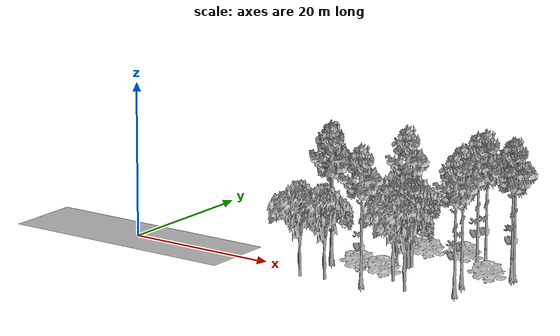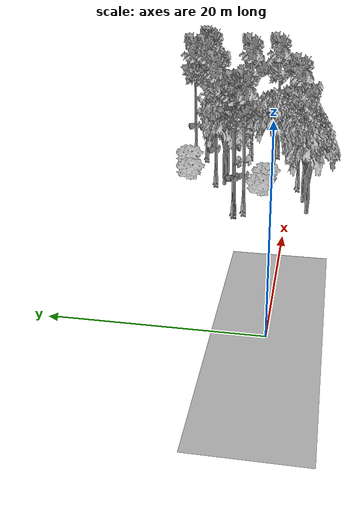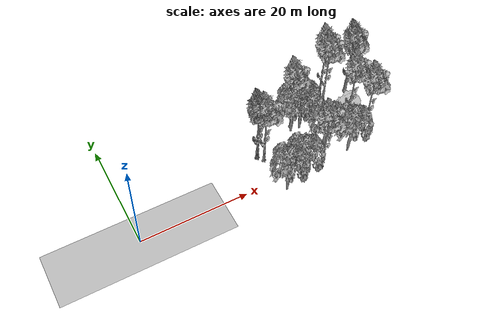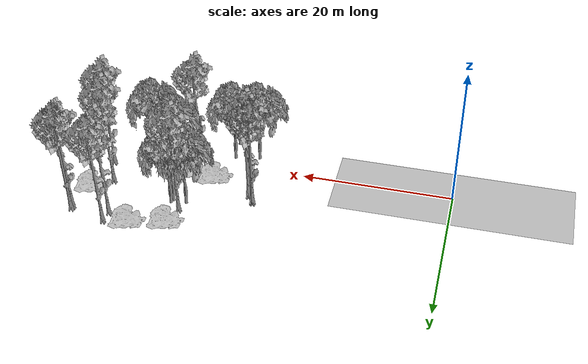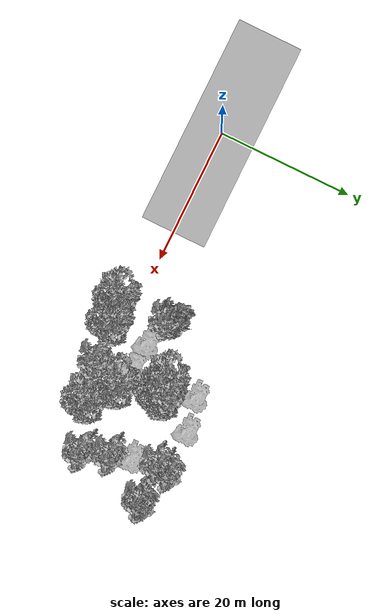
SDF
<sdf version="1.7">
 <world name="default">
  <model name="ground_plane">
   <static>1</static>
   <link name="link">
    <collision name="collision">
     <pose>-50 0 0 0 -0 0</pose>
     <geometry><plane><normal>0 0 1</normal><size>100 100</size></plane></geometry>
     <surface><contact><ode><min_depth>0.01</min_depth><max_vel>0</max_vel></ode></contact></surface>
    </collision>
    <visual name="grass">
     <cast_shadows>0</cast_shadows>
     <geometry>
      <mesh>
       <scale>0.5814285714285714 0.18142857142857144 0.1</scale>
       <uri>file://grass_plane/meshes/grass_plane.dae</uri>
      </mesh>
     </geometry>
    </visual>
   </link>
  </model>
  <model name="Tree 1">
   <static>1</static>
   <pose>40.46276296069715 -0.10571722466873723 0 1.57079 -0 0</pose>
   <link name="link">
    <collision name="collision">
     <geometry><mesh><scale>3.5 5 3.5</scale><uri>model://tree_2/meshes/tree_2.obj</uri></mesh></geometry>
    </collision>
    <visual name="visual">
     <geometry><mesh><scale>3.5 5 3.5</scale><uri>model://tree_2/meshes/tree_2.obj</uri></mesh></geometry>
    </visual>
   </link>
  </model>
  <model name="Tree 2">
   <static>1</static>
   <pose>29.856909890999887 -1.691752062501724 0 1.57079 -0 0</pose>
   <link name="link">
    <collision name="collision">
     <geometry><mesh><scale>3.5 5 3.5</scale><uri>model://tree_2/meshes/tree_2.obj</uri></mesh></geometry>
    </collision>
    <visual name="visual">
     <geometry><mesh><scale>3.5 5 3.5</scale><uri>model://tree_2/meshes/tree_2.obj</uri></mesh></geometry>
    </visual>
   </link>
  </model>
  <model name="Tree 8">
   <static>1</static>
   <pose>43.079067587226476 12.156543890776938 0 1.57079 -0 0</pose>
   <link name="link">
    <collision name="collision">
     <geometry><mesh><scale>3.5 5 3.5</scale><uri>model://tree_9/meshes/tree_9.obj</uri></mesh></geometry>
    </collision>
    <visual name="visual">
     <geometry><mesh><scale>3.5 5 3.5</scale><uri>model://tree_9/meshes/tree_9.obj</uri></mesh></geometry>
    </visual>
   </link>
  </model>
  <model name="Tree 11">
   <static>1</static>
   <pose>31.30791522382289 3.5100560860764567 0 1.57079 -0 0</pose>
   <link name="link">
    <collision name="collision">
     <geometry><mesh><scale>3 2 3</scale><uri>model://tree_3/meshes/tree_3.obj</uri></mesh></geometry>
    </collision>
    <visual name="visual">
     <geometry><mesh><scale>3 2 3</scale><uri>model://tree_3/meshes/tree_3.obj</uri></mesh></geometry>
    </visual>
   </link>
  </model>
  <model name="Tree 13">
   <static>1</static>
   <pose>48.193910877338 12.449965114180863 0 1.57079 -0 0</pose>
   <link name="link">
    <collision name="collision">
     <geometry><mesh><scale>3.5 5 3.5</scale><uri>model://tree_9/meshes/tree_9.obj</uri></mesh></geometry>
    </collision>
    <visual name="visual">
     <geometry><mesh><scale>3.5 5 3.5</scale><uri>model://tree_9/meshes/tree_9.obj</uri></mesh></geometry>
    </visual>
   </link>
  </model>
  <model name="Tree 19">
   <static>1</static>
   <pose>39.784866254239205 13.94450292007286 0 1.57079 -0 0</pose>
   <link name="link">
    <collision name="collision">
     <geometry><mesh><scale>3 2 3</scale><uri>model://tree_3/meshes/tree_3.obj</uri></mesh></geometry>
    </collision>
    <visual name="visual">
     <geometry><mesh><scale>3 2 3</scale><uri>model://tree_3/meshes/tree_3.obj</uri></mesh></geometry>
    </visual>
   </link>
  </model>
  <model name="Tree 34">
   <static>1</static>
   <pose>25.53621532801921 6.1579300585820285 0 1.57079 -0 0</pose>
   <link name="link">
    <collision name="collision">
     <geometry><mesh><scale>3.5 5 3.5</scale><uri>model://tree_9/meshes/tree_9.obj</uri></mesh></geometry>
    </collision>
    <visual name="visual">
     <geometry><mesh><scale>3.5 5 3.5</scale><uri>model://tree_9/meshes/tree_9.obj</uri></mesh></geometry>
    </visual>
   </link>
  </model>
  <model name="Tree 41">
   <static>1</static>
   <pose>34.45037603316423 9.625623190624879 0 1.57079 -0 0</pose>
   <link name="link">
    <collision name="collision">
     <geometry><mesh><scale>3.5 5 3.5</scale><uri>model://tree_9/meshes/tree_9.obj</uri></mesh></geometry>
    </collision>
    <visual name="visual">
     <geometry><mesh><scale>3.5 5 3.5</scale><uri>model://tree_9/meshes/tree_9.obj</uri></mesh></geometry>
    </visual>
   </link>
  </model>
  <model name="Tree 56">
   <static>1</static>
   <pose>45.94304104421097 2.590300618802022 0 1.57079 -0 0</pose>
   <link name="link">
    <collision name="collision">
     <geometry><mesh><scale>3.5 5 3.5</scale><uri>model://tree_9/meshes/tree_9.obj</uri></mesh></geometry>
    </collision>
    <visual name="visual">
     <geometry><mesh><scale>3.5 5 3.5</scale><uri>model://tree_9/meshes/tree_9.obj</uri></mesh></geometry>
    </visual>
   </link>
  </model>
  <model name="Tree 62">
   <static>1</static>
   <pose>26.288969689116897 5.131095925059988 0 1.57079 -0 0</pose>
   <link name="link">
    <collision name="collision">
     <geometry><mesh><scale>3.5 5 3.5</scale><uri>model://tree_9/meshes/tree_9.obj</uri></mesh></geometry>
    </collision>
    <visual name="visual">
     <geometry><mesh><scale>3.5 5 3.5</scale><uri>model://tree_9/meshes/tree_9.obj</uri></mesh></geometry>
    </visual>
   </link>
  </model>
  <model name="Tree 71">
   <static>1</static>
   <pose>43.32704779671005 13.731755057601621 0 1.57079 -0 0</pose>
   <link name="link">
    <collision name="collision">
     <geometry><mesh><scale>3.5 5 3.5</scale><uri>model://tree_9/meshes/tree_9.obj</uri></mesh></geometry>
    </collision>
    <visual name="visual">
     <geometry><mesh><scale>3.5 5 3.5</scale><uri>model://tree_9/meshes/tree_9.obj</uri></mesh></geometry>
    </visual>
   </link>
  </model>
  <model name="Tree 72">
   <static>1</static>
   <pose>35.43525270231825 8.279455354706144 0 1.57079 -0 0</pose>
   <link name="link">
    <collision name="collision">
     <geometry><mesh><scale>3.5 5 3.5</scale><uri>model://tree_2/meshes/tree_2.obj</uri></mesh></geometry>
    </collision>
    <visual name="visual">
     <geometry><mesh><scale>3.5 5 3.5</scale><uri>model://tree_2/meshes/tree_2.obj</uri></mesh></geometry>
    </visual>
   </link>
  </model>
  <model name="Tree 85">
   <static>1</static>
   <pose>37.02871461609419 2.5571218210506075 0 1.57079 -0 0</pose>
   <link name="link">
    <collision name="collision">
     <geometry><mesh><scale>3.5 5 3.5</scale><uri>model://tree_2/meshes/tree_2.obj</uri></mesh></geometry>
    </collision>
    <visual name="visual">
     <geometry><mesh><scale>3.5 5 3.5</scale><uri>model://tree_2/meshes/tree_2.obj</uri></mesh></geometry>
    </visual>
   </link>
  </model>
  <model name="Tree 90">
   <static>1</static>
   <pose>26.62445991176527 -2.2873090977530204 0 1.57079 -0 0</pose>
   <link name="link">
    <collision name="collision">
     <geometry><mesh><scale>3.5 5 3.5</scale><uri>model://tree_2/meshes/tree_2.obj</uri></mesh></geometry>
    </collision>
    <visual name="visual">
     <geometry><mesh><scale>3.5 5 3.5</scale><uri>model://tree_2/meshes/tree_2.obj</uri></mesh></geometry>
    </visual>
   </link>
  </model>
  <model name="Tree 99">
   <static>1</static>
   <pose>46.57663988783587 8.630997696104302 0 1.57079 -0 0</pose>
   <link name="link">
    <collision name="collision">
     <geometry><mesh><scale>3 2 3</scale><uri>model://tree_3/meshes/tree_3.obj</uri></mesh></geometry>
    </collision>
    <visual name="visual">
     <geometry><mesh><scale>3 2 3</scale><uri>model://tree_3/meshes/tree_3.obj</uri></mesh></geometry>
    </visual>
   </link>
  </model>
  <model name="Tree 107">
   <static>1</static>
   <pose>48.09796830018786 12.081272433709035 0 1.57079 -0 0</pose>
   <link name="link">
    <collision name="collision">
     <geometry><mesh><scale>3.5 5 3.5</scale><uri>model://tree_9/meshes/tree_9.obj</uri></mesh></geometry>
    </collision>
    <visual name="visual">
     <geometry><mesh><scale>3.5 5 3.5</scale><uri>model://tree_9/meshes/tree_9.obj</uri></mesh></geometry>
    </visual>
   </link>
  </model>
  <model name="Tree 119">
   <static>1</static>
   <pose>25.44578829945638 6.241472031794913 0 1.57079 -0 0</pose>
   <link name="link">
    <collision name="collision">
     <geometry><mesh><scale>3.5 5 3.5</scale><uri>model://tree_9/meshes/tree_9.obj</uri></mesh></geometry>
    </collision>
    <visual name="visual">
     <geometry><mesh><scale>3.5 5 3.5</scale><uri>model://tree_9/meshes/tree_9.obj</uri></mesh></geometry>
    </visual>
   </link>
  </model>
  <model name="Tree 123">
   <static>1</static>
   <pose>34.71408162143952 -0.7879140699160523 0 1.57079 -0 0</pose>
   <link name="link">
    <collision name="collision">
     <geometry><mesh><scale>3.5 5 3.5</scale><uri>model://tree_9/meshes/tree_9.obj</uri></mesh></geometry>
    </collision>
    <visual name="visual">
     <geometry><mesh><scale>3.5 5 3.5</scale><uri>model://tree_9/meshes/tree_9.obj</uri></mesh></geometry>
    </visual>
   </link>
  </model>
  <model name="Tree 133">
   <static>1</static>
   <pose>35.6664896620959 8.707666999014759 0 1.57079 -0 0</pose>
   <link name="link">
    <collision name="collision">
     <geometry><mesh><scale>3.5 5 3.5</scale><uri>model://tree_2/meshes/tree_2.obj</uri></mesh></geometry>
    </collision>
    <visual name="visual">
     <geometry><mesh><scale>3.5 5 3.5</scale><uri>model://tree_2/meshes/tree_2.obj</uri></mesh></geometry>
    </visual>
   </link>
  </model>
  <model name="Tree 137">
   <static>1</static>
   <pose>35.005339391937056 12.983689133818494 0 1.57079 -0 0</pose>
   <link name="link">
    <collision name="collision">
     <geometry><mesh><scale>3 2 3</scale><uri>model://tree_3/meshes/tree_3.obj</uri></mesh></geometry>
    </collision>
    <visual name="visual">
     <geometry><mesh><scale>3 2 3</scale><uri>model://tree_3/meshes/tree_3.obj</uri></mesh></geometry>
    </visual>
   </link>
  </model>
  <model name="Tree 144">
   <static>1</static>
   <pose>33.689863831771135 8.383856321801161 0 1.57079 -0 0</pose>
   <link name="link">
    <collision name="collision">
     <geometry><mesh><scale>3.5 5 3.5</scale><uri>model://tree_2/meshes/tree_2.obj</uri></mesh></geometry>
    </collision>
    <visual name="visual">
     <geometry><mesh><scale>3.5 5 3.5</scale><uri>model://tree_2/meshes/tree_2.obj</uri></mesh></geometry>
    </visual>
   </link>
  </model>
  <model name="Tree 152">
   <static>1</static>
   <pose>34.95202439891291 3.110149013176642 0 1.57079 -0 0</pose>
   <link name="link">
    <collision name="collision">
     <geometry><mesh><scale>3 2 3</scale><uri>model://tree_3/meshes/tree_3.obj</uri></mesh></geometry>
    </collision>
    <visual name="visual">
     <geometry><mesh><scale>3 2 3</scale><uri>model://tree_3/meshes/tree_3.obj</uri></mesh></geometry>
    </visual>
   </link>
  </model>
  <model name="Tree 166">
   <static>1</static>
   <pose>44.672766175179845 6.179253563668503 0 1.57079 -0 0</pose>
   <link name="link">
    <collision name="collision">
     <geometry><mesh><scale>3.5 5 3.5</scale><uri>model://tree_9/meshes/tree_9.obj</uri></mesh></geometry>
    </collision>
    <visual name="visual">
     <geometry><mesh><scale>3.5 5 3.5</scale><uri>model://tree_9/meshes/tree_9.obj</uri></mesh></geometry>
    </visual>
   </link>
  </model>
 </world>
</sdf>
